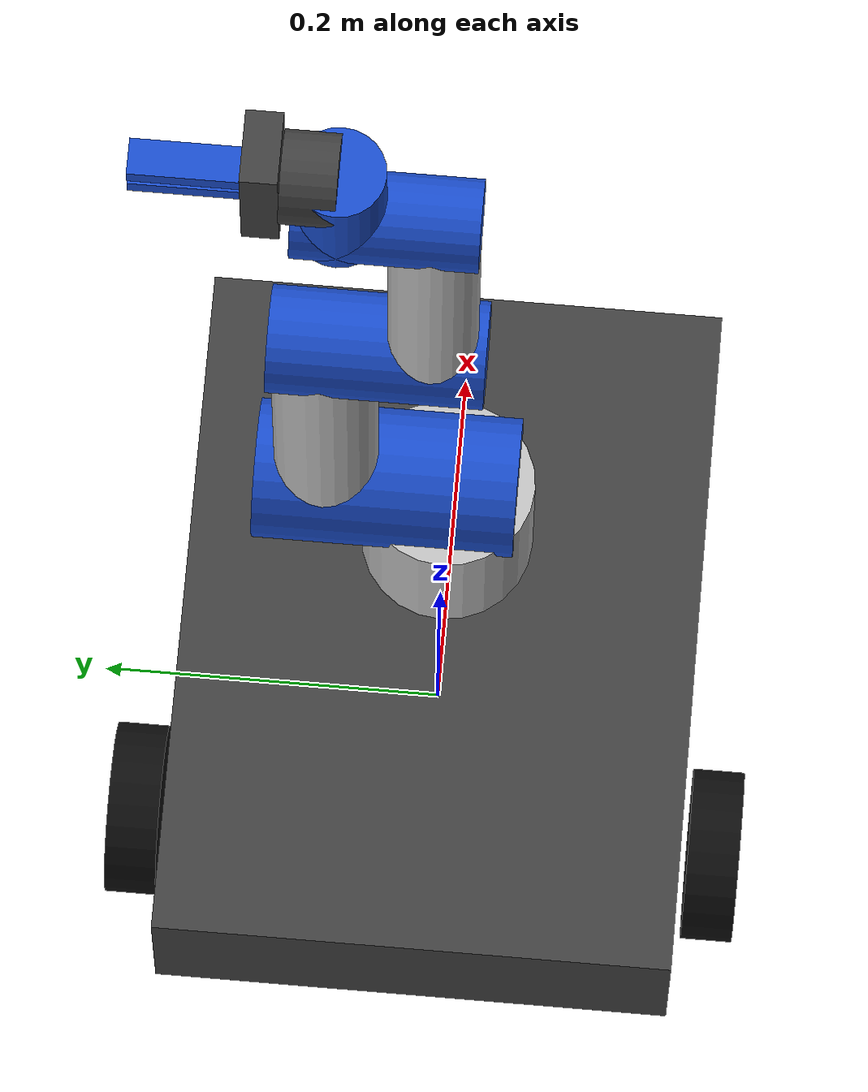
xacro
<?xml version="1.0"?>
<!-- 모바일 매니퓰레이터 (6축 버전) 최상위 파일 - 차동구동 베이스 + UR식 6축 팔 -->
<!--
  주의) 주석 안에 "콜론+공백"을 쓰지 말 것.
  gazebo_ros2_control(Humble)이 URDF를 ROS 파라미터(YAML)로 넘기면서 파싱 에러가 남.
  SCARA 버전 파일은 수정하지 않고 include 해서 매크로 정의만 가져다 씀.
-->
<robot name="mobile_manipulator_ur6" xmlns:xacro="http://www.ros.org/wiki/xacro">
  <xacro:arg name="use_sim" default="false"/>
  <!-- Gazebo 실행 시 bringup launch에서 컨트롤러 yaml 경로를 넘겨줌 -->
  <xacro:arg name="controllers_file" default=""/>

  <!-- 기존 파일 (치수, 재질, 관성, 베이스, ros2_control/gazebo 공용 매크로) -->
  <xacro:include filename="$(find mobile_manipulator_description)/urdf/common.xacro"/>
  <xacro:include filename="$(find mobile_manipulator_description)/urdf/base.xacro"/>
  <xacro:include filename="$(find mobile_manipulator_description)/urdf/ros2_control.xacro"/>
  <xacro:include filename="$(find mobile_manipulator_description)/urdf/gazebo.xacro"/>

  <!-- 6축 전용 파일 -->
  <xacro:include filename="$(find mobile_manipulator_description)/urdf/ur6_arm.xacro"/>
  <xacro:include filename="$(find mobile_manipulator_description)/urdf/ur6_ros2_control.xacro"/>
  <xacro:include filename="$(find mobile_manipulator_description)/urdf/ur6_gazebo.xacro"/>

  <xacro:mobile_base/>
  <xacro:ur6_arm parent="base_link"/>

  <xacro:ur6_ros2_control use_sim="$(arg use_sim)"/>
  <xacro:ur6_gazebo controllers_file="$(arg controllers_file)"/>
</robot>

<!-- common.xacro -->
<!-- 공통 치수, 재질, 관성 매크로 -->
<robot xmlns:xacro="http://www.ros.org/wiki/xacro">

  <!-- ===================== 치수 (단위 - m, kg) ===================== -->
  <!-- 베이스 -->
  <xacro:property name="base_length" value="0.40"/>
  <xacro:property name="base_width"  value="0.30"/>
  <xacro:property name="base_height" value="0.10"/>
  <xacro:property name="base_mass"   value="5.0"/>

  <!-- 바퀴 (base_link 원점 = 바퀴 축 높이) -->
  <xacro:property name="wheel_radius" value="0.05"/>
  <xacro:property name="wheel_width"  value="0.03"/>
  <xacro:property name="wheel_mass"   value="0.5"/>
  <xacro:property name="wheel_x"      value="-0.10"/>
  <xacro:property name="wheel_y"      value="0.17"/>

  <!-- 캐스터 -->
  <xacro:property name="caster_radius" value="0.025"/>
  <xacro:property name="caster_mass"   value="0.1"/>
  <xacro:property name="caster_x"      value="0.15"/>

  <!-- SCARA 팔 -->
  <xacro:property name="arm_mount_x"     value="0.05"/>
  <xacro:property name="column_radius"   value="0.04"/>
  <xacro:property name="column_height"   value="0.25"/>
  <xacro:property name="column_mass"     value="0.5"/>

  <xacro:property name="link1_length" value="0.20"/>
  <xacro:property name="link1_width"  value="0.05"/>
  <xacro:property name="link1_height" value="0.03"/>
  <xacro:property name="link1_mass"   value="0.3"/>

  <xacro:property name="link2_length" value="0.15"/>
  <xacro:property name="link2_width"  value="0.04"/>
  <xacro:property name="link2_height" value="0.03"/>
  <xacro:property name="link2_mass"   value="0.2"/>

  <xacro:property name="quill_radius" value="0.012"/>
  <xacro:property name="quill_length" value="0.40"/>
  <xacro:property name="quill_mass"   value="0.1"/>
  <xacro:property name="quill_stroke" value="0.18"/>
  <!-- quill 프레임(= link2 바닥) 아래로 튀어나온 길이, 나머지는 위로 솟음 -->
  <xacro:property name="quill_bottom" value="0.15"/>

  <!-- 그리퍼 -->
  <xacro:property name="gripper_base_x"    value="0.04"/>
  <xacro:property name="gripper_base_y"    value="0.08"/>
  <xacro:property name="gripper_base_z"    value="0.02"/>
  <xacro:property name="gripper_base_mass" value="0.05"/>
  <xacro:property name="finger_x"    value="0.02"/>
  <xacro:property name="finger_y"    value="0.01"/>
  <xacro:property name="finger_z"    value="0.06"/>
  <xacro:property name="finger_mass" value="0.02"/>
  <xacro:property name="finger_stroke" value="0.03"/>

  <!-- ===================== 재질 (RViz 색상) ===================== -->
  <material name="dark_grey"><color rgba="0.25 0.25 0.25 1.0"/></material>
  <material name="black"><color rgba="0.05 0.05 0.05 1.0"/></material>
  <material name="orange"><color rgba="1.0 0.5 0.0 1.0"/></material>
  <material name="silver"><color rgba="0.75 0.75 0.75 1.0"/></material>
  <material name="blue"><color rgba="0.1 0.3 0.8 1.0"/></material>

  <!-- ===================== 관성 매크로 ===================== -->
  <!-- 균일 밀도 직육면체 - I = m/12 (b^2 + c^2) -->
  <xacro:macro name="box_inertia" params="m x y z *origin">
    <inertial>
      <xacro:insert_block name="origin"/>
      <mass value="${m}"/>
      <inertia ixx="${m * (y*y + z*z) / 12}" ixy="0" ixz="0"
               iyy="${m * (x*x + z*z) / 12}" iyz="0"
               izz="${m * (x*x + y*y) / 12}"/>
    </inertial>
  </xacro:macro>

  <!-- 균일 밀도 원기둥 (축 = 로컬 z) - Ixx = Iyy = m/12 (3r^2 + h^2), Izz = m r^2 / 2 -->
  <xacro:macro name="cylinder_inertia" params="m r h *origin">
    <inertial>
      <xacro:insert_block name="origin"/>
      <mass value="${m}"/>
      <inertia ixx="${m * (3*r*r + h*h) / 12}" ixy="0" ixz="0"
               iyy="${m * (3*r*r + h*h) / 12}" iyz="0"
               izz="${m * r*r / 2}"/>
    </inertial>
  </xacro:macro>

  <!-- 균일 밀도 구 - I = 2/5 m r^2 -->
  <xacro:macro name="sphere_inertia" params="m r *origin">
    <inertial>
      <xacro:insert_block name="origin"/>
      <mass value="${m}"/>
      <inertia ixx="${2 * m * r*r / 5}" ixy="0" ixz="0"
               iyy="${2 * m * r*r / 5}" iyz="0"
               izz="${2 * m * r*r / 5}"/>
    </inertial>
  </xacro:macro>

</robot>

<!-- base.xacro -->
<!-- 차동구동 모바일 베이스 - base_footprint - base_link - 좌우 바퀴 + 캐스터 -->
<robot xmlns:xacro="http://www.ros.org/wiki/xacro">

  <xacro:macro name="wheel" params="side y_sign">
    <joint name="${side}_wheel_joint" type="continuous">
      <parent link="base_link"/>
      <child link="${side}_wheel_link"/>
      <origin xyz="${wheel_x} ${y_sign * wheel_y} 0" rpy="0 0 0"/>
      <axis xyz="0 1 0"/>
      <limit effort="10" velocity="20"/>
      <dynamics damping="0.01"/>
    </joint>

    <link name="${side}_wheel_link">
      <!-- 원기둥은 기본이 z축 방향이므로 x축으로 90도 돌려 y축 방향으로 눕힘 -->
      <visual>
        <origin xyz="0 0 0" rpy="${pi/2} 0 0"/>
        <geometry>
          <cylinder radius="${wheel_radius}" length="${wheel_width}"/>
        </geometry>
        <material name="black"/>
      </visual>
      <collision>
        <origin xyz="0 0 0" rpy="${pi/2} 0 0"/>
        <geometry>
          <cylinder radius="${wheel_radius}" length="${wheel_width}"/>
        </geometry>
      </collision>
      <xacro:cylinder_inertia m="${wheel_mass}" r="${wheel_radius}" h="${wheel_width}">
        <origin xyz="0 0 0" rpy="${pi/2} 0 0"/>
      </xacro:cylinder_inertia>
    </link>
  </xacro:macro>

  <xacro:macro name="mobile_base">
    <!-- 지면 위 로봇 기준 좌표 (diff_drive_controller의 base_frame_id) -->
    <link name="base_footprint"/>

    <joint name="base_joint" type="fixed">
      <parent link="base_footprint"/>
      <child link="base_link"/>
      <origin xyz="0 0 ${wheel_radius}" rpy="0 0 0"/>
    </joint>

    <!-- base_link 원점은 바퀴 축 높이, 몸체는 그 위로 base_height 만큼 -->
    <link name="base_link">
      <visual>
        <origin xyz="0 0 ${base_height/2}" rpy="0 0 0"/>
        <geometry>
          <box size="${base_length} ${base_width} ${base_height}"/>
        </geometry>
        <material name="dark_grey"/>
      </visual>
      <collision>
        <origin xyz="0 0 ${base_height/2}" rpy="0 0 0"/>
        <geometry>
          <box size="${base_length} ${base_width} ${base_height}"/>
        </geometry>
      </collision>
      <xacro:box_inertia m="${base_mass}" x="${base_length}" y="${base_width}" z="${base_height}">
        <origin xyz="0 0 ${base_height/2}" rpy="0 0 0"/>
      </xacro:box_inertia>
    </link>

    <xacro:wheel side="left"  y_sign="1"/>
    <xacro:wheel side="right" y_sign="-1"/>

    <!-- 앞쪽 캐스터 - 몸체 바닥(z=0)에서 지면(z=-wheel_radius)까지 닿도록 -->
    <joint name="caster_joint" type="fixed">
      <parent link="base_link"/>
      <child link="caster_link"/>
      <origin xyz="${caster_x} 0 ${caster_radius - wheel_radius}" rpy="0 0 0"/>
    </joint>

    <link name="caster_link">
      <visual>
        <geometry>
          <sphere radius="${caster_radius}"/>
        </geometry>
        <material name="silver"/>
      </visual>
      <collision>
        <geometry>
          <sphere radius="${caster_radius}"/>
        </geometry>
      </collision>
      <xacro:sphere_inertia m="${caster_mass}" r="${caster_radius}">
        <origin xyz="0 0 0" rpy="0 0 0"/>
      </xacro:sphere_inertia>
    </link>
  </xacro:macro>

</robot>

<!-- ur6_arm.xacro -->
<robot xmlns:xacro="http://www.ros.org/wiki/xacro">

  <!-- ===================== 6축 팔 치수 (단위 m, kg) ===================== -->
  <xacro:property name="ur_mount_x"        value="0.05"/>
  <xacro:property name="ur_pedestal_r"     value="0.05"/>
  <xacro:property name="ur_pedestal_h"     value="0.10"/>
  <xacro:property name="ur_pedestal_mass"  value="0.5"/>

  <xacro:property name="ur_shoulder_offset" value="0.07"/>
  <xacro:property name="ur_shoulder_r"      value="0.04"/>
  <xacro:property name="ur_shoulder_mass"   value="0.4"/>

  <xacro:property name="ur_upper_len"   value="0.22"/>
  <xacro:property name="ur_upper_r"     value="0.03"/>
  <xacro:property name="ur_upper_mass"  value="0.4"/>
  <xacro:property name="ur_elbow_offset" value="0.06"/>

  <xacro:property name="ur_fore_len"   value="0.20"/>
  <xacro:property name="ur_fore_r"     value="0.025"/>
  <xacro:property name="ur_fore_mass"  value="0.3"/>

  <xacro:property name="ur_wrist_r"         value="0.025"/>
  <xacro:property name="ur_wrist1_offset"   value="0.05"/>
  <xacro:property name="ur_wrist2_len"      value="0.05"/>
  <xacro:property name="ur_wrist3_len"      value="0.03"/>
  <xacro:property name="ur_wrist_mass"      value="0.1"/>

  <!-- 원기둥 링크 한 개 (visual + collision + inertial). rpy 로 축 방향 지정 -->
  <xacro:macro name="ur_cylinder_link" params="name r h mass color *origin">
    <link name="${name}">
      <visual>
        <xacro:insert_block name="origin"/>
        <geometry>
          <cylinder radius="${r}" length="${h}"/>
        </geometry>
        <material name="${color}"/>
      </visual>
      <collision>
        <xacro:insert_block name="origin"/>
        <geometry>
          <cylinder radius="${r}" length="${h}"/>
        </geometry>
      </collision>
      <xacro:cylinder_inertia m="${mass}" r="${r}" h="${h}">
        <xacro:insert_block name="origin"/>
      </xacro:cylinder_inertia>
    </link>
  </xacro:macro>

  <xacro:macro name="ur_revolute" params="name parent child axis lower upper xyz">
    <joint name="${name}" type="revolute">
      <parent link="${parent}"/>
      <child link="${child}"/>
      <origin xyz="${xyz}" rpy="0 0 0"/>
      <axis xyz="${axis}"/>
      <limit lower="${lower}" upper="${upper}" effort="20" velocity="2.0"/>
      <dynamics damping="0.1"/>
    </joint>
  </xacro:macro>

  <!-- ===================== 그리퍼 (SCARA 와 같은 링크/관절 이름) ===================== -->
  <xacro:macro name="ur_finger" params="side y_sign">
    <joint name="gripper_${side}_joint" type="prismatic">
      <parent link="gripper_base_link"/>
      <child link="gripper_${side}_link"/>
      <origin xyz="0 ${y_sign * (finger_y/2 + 0.002)} ${-gripper_base_z}" rpy="0 0 0"/>
      <axis xyz="0 ${y_sign} 0"/>
      <limit lower="0.0" upper="${finger_stroke}" effort="10" velocity="0.5"/>
      <dynamics damping="0.1"/>
      <xacro:if value="${side == 'right'}">
        <mimic joint="gripper_left_joint" multiplier="1"/>
      </xacro:if>
    </joint>

    <link name="gripper_${side}_link">
      <visual>
        <origin xyz="0 0 ${-finger_z/2}" rpy="0 0 0"/>
        <geometry>
          <box size="${finger_x} ${finger_y} ${finger_z}"/>
        </geometry>
        <material name="blue"/>
      </visual>
      <collision>
        <origin xyz="0 0 ${-finger_z/2}" rpy="0 0 0"/>
        <geometry>
          <box size="${finger_x} ${finger_y} ${finger_z}"/>
        </geometry>
      </collision>
      <xacro:box_inertia m="${finger_mass}" x="${finger_x}" y="${finger_y}" z="${finger_z}">
        <origin xyz="0 0 ${-finger_z/2}" rpy="0 0 0"/>
      </xacro:box_inertia>
    </link>
  </xacro:macro>

  <!-- 그리퍼 좌표계의 -z 방향으로 손가락이 뻗음 -->
  <xacro:macro name="ur_gripper" params="parent *origin">
    <joint name="gripper_mount_joint" type="fixed">
      <parent link="${parent}"/>
      <child link="gripper_base_link"/>
      <xacro:insert_block name="origin"/>
    </joint>

    <link name="gripper_base_link">
      <visual>
        <origin xyz="0 0 ${-gripper_base_z/2}" rpy="0 0 0"/>
        <geometry>
          <box size="${gripper_base_x} ${gripper_base_y} ${gripper_base_z}"/>
        </geometry>
        <material name="dark_grey"/>
      </visual>
      <collision>
        <origin xyz="0 0 ${-gripper_base_z/2}" rpy="0 0 0"/>
        <geometry>
          <box size="${gripper_base_x} ${gripper_base_y} ${gripper_base_z}"/>
        </geometry>
      </collision>
      <xacro:box_inertia m="${gripper_base_mass}" x="${gripper_base_x}" y="${gripper_base_y}" z="${gripper_base_z}">
        <origin xyz="0 0 ${-gripper_base_z/2}" rpy="0 0 0"/>
      </xacro:box_inertia>
    </link>

    <xacro:ur_finger side="left"  y_sign="1"/>
    <xacro:ur_finger side="right" y_sign="-1"/>

    <!-- 손가락 끝 사이의 가상 프레임 (IK 기준점) -->
    <joint name="end_effector_joint" type="fixed">
      <parent link="gripper_base_link"/>
      <child link="end_effector_link"/>
      <origin xyz="0 0 ${-(gripper_base_z + finger_z)}" rpy="0 0 0"/>
    </joint>
    <link name="end_effector_link"/>
  </xacro:macro>

  <xacro:macro name="ur6_arm" params="parent">
    <!-- 베이스 윗면의 받침대 -->
    <joint name="arm_mount_joint" type="fixed">
      <parent link="${parent}"/>
      <child link="arm_base_link"/>
      <origin xyz="${ur_mount_x} 0 ${base_height}" rpy="0 0 0"/>
    </joint>
    <xacro:ur_cylinder_link name="arm_base_link" r="${ur_pedestal_r}" h="${ur_pedestal_h}"
                            mass="${ur_pedestal_mass}" color="silver">
      <origin xyz="0 0 ${ur_pedestal_h/2}" rpy="0 0 0"/>
    </xacro:ur_cylinder_link>

    <!-- 1축 (어깨 회전) -->
    <xacro:ur_revolute name="joint1" parent="arm_base_link" child="shoulder_link"
                       axis="0 0 1" lower="${-pi}" upper="${pi}" xyz="0 0 ${ur_pedestal_h}"/>
    <!-- y 방향 하우징 (2축 모터) -->
    <xacro:ur_cylinder_link name="shoulder_link" r="${ur_shoulder_r}" h="${ur_shoulder_offset + 2*ur_shoulder_r}"
                            mass="${ur_shoulder_mass}" color="blue">
      <origin xyz="0 ${ur_shoulder_offset/2} 0" rpy="${pi/2} 0 0"/>
    </xacro:ur_cylinder_link>

    <!-- 2축 (어깨 들기) -->
    <xacro:ur_revolute name="joint2" parent="shoulder_link" child="upper_arm_link"
                       axis="0 1 0" lower="-2.0" upper="2.0" xyz="0 ${ur_shoulder_offset} 0"/>
    <xacro:ur_cylinder_link name="upper_arm_link" r="${ur_upper_r}" h="${ur_upper_len}"
                            mass="${ur_upper_mass}" color="silver">
      <origin xyz="0 0 ${ur_upper_len/2}" rpy="0 0 0"/>
    </xacro:ur_cylinder_link>

    <!-- 3축 (팔꿈치) -->
    <xacro:ur_revolute name="joint3" parent="upper_arm_link" child="forearm_link"
                       axis="0 1 0" lower="-2.6" upper="2.6" xyz="0 ${-ur_elbow_offset} ${ur_upper_len}"/>
    <link name="forearm_link">
      <visual>
        <origin xyz="0 0 ${ur_fore_len/2}" rpy="0 0 0"/>
        <geometry>
          <cylinder radius="${ur_fore_r}" length="${ur_fore_len}"/>
        </geometry>
        <material name="silver"/>
      </visual>
      <!-- 팔꿈치 하우징 (위팔과 이어지는 y 방향 원기둥, 보기용) -->
      <visual>
        <origin xyz="0 ${ur_elbow_offset/2} 0" rpy="${pi/2} 0 0"/>
        <geometry>
          <cylinder radius="${ur_upper_r}" length="${ur_elbow_offset + 2*ur_upper_r}"/>
        </geometry>
        <material name="blue"/>
      </visual>
      <collision>
        <origin xyz="0 0 ${ur_fore_len/2}" rpy="0 0 0"/>
        <geometry>
          <cylinder radius="${ur_fore_r}" length="${ur_fore_len}"/>
        </geometry>
      </collision>
      <xacro:cylinder_inertia m="${ur_fore_mass}" r="${ur_fore_r}" h="${ur_fore_len}">
        <origin xyz="0 0 ${ur_fore_len/2}" rpy="0 0 0"/>
      </xacro:cylinder_inertia>
    </link>

    <!-- 4축 (손목1) -->
    <xacro:ur_revolute name="joint4" parent="forearm_link" child="wrist1_link"
                       axis="0 1 0" lower="${-pi}" upper="${pi}" xyz="0 0 ${ur_fore_len}"/>
    <xacro:ur_cylinder_link name="wrist1_link" r="${ur_wrist_r}" h="${ur_wrist1_offset + 2*ur_wrist_r}"
                            mass="${ur_wrist_mass}" color="blue">
      <origin xyz="0 ${ur_wrist1_offset/2} 0" rpy="${pi/2} 0 0"/>
    </xacro:ur_cylinder_link>

    <!-- 5축 (손목2) -->
    <xacro:ur_revolute name="joint5" parent="wrist1_link" child="wrist2_link"
                       axis="0 0 1" lower="${-pi}" upper="${pi}" xyz="0 ${ur_wrist1_offset} 0"/>
    <xacro:ur_cylinder_link name="wrist2_link" r="${ur_wrist_r}" h="${ur_wrist2_len + ur_wrist_r}"
                            mass="${ur_wrist_mass}" color="blue">
      <origin xyz="0 0 ${(ur_wrist2_len + ur_wrist_r)/2 - ur_wrist_r/2}" rpy="0 0 0"/>
    </xacro:ur_cylinder_link>

    <!-- 6축 (손목3, 플랜지) -->
    <xacro:ur_revolute name="joint6" parent="wrist2_link" child="wrist3_link"
                       axis="0 1 0" lower="${-pi}" upper="${pi}" xyz="0 0 ${ur_wrist2_len}"/>
    <xacro:ur_cylinder_link name="wrist3_link" r="${ur_wrist_r}" h="${ur_wrist3_len}"
                            mass="${ur_wrist_mass/2}" color="dark_grey">
      <origin xyz="0 ${ur_wrist3_len/2} 0" rpy="${pi/2} 0 0"/>
    </xacro:ur_cylinder_link>

    <!-- 공구 플랜지 좌표계 - z축이 wrist3 의 +y 방향을 향하도록 회전 -->
    <joint name="tool0_joint" type="fixed">
      <parent link="wrist3_link"/>
      <child link="tool0"/>
      <origin xyz="0 ${ur_wrist3_len} 0" rpy="${-pi/2} 0 0"/>
    </joint>
    <link name="tool0"/>

    <!-- 그리퍼를 뒤집어 붙여 손가락이 tool0 의 +z 방향으로 뻗게 함 -->
    <xacro:ur_gripper parent="tool0">
      <origin xyz="0 0 0" rpy="${pi} 0 0"/>
    </xacro:ur_gripper>
  </xacro:macro>

</robot>
